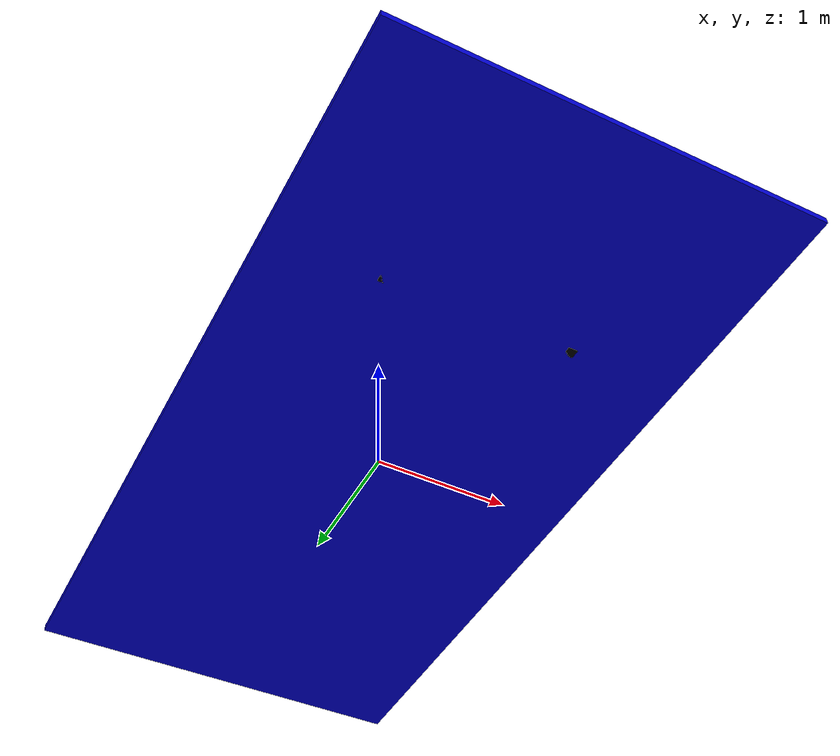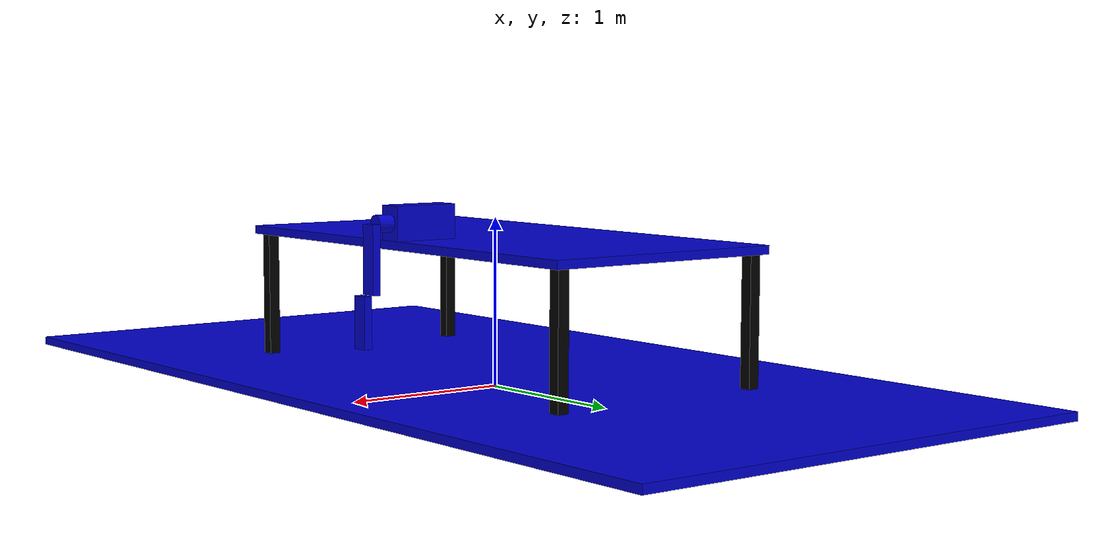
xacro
<?xml version="1.0" encoding="utf-8"?>
	<robot name="bldc_sim" xmlns:xacro="http://ros.org/wiki/xacro">
	<xacro:include filename="$(find bldc_stand_sim)/bldc_description/bldc_sim.urdf.xacro"/>

			<transmission name="tran0">
		     <type>transmission_interface/SimpleTransmission</type>
		     <joint name="stand_rotor">
		      <hardwareInterface>hardware_interface/EffortJointInterface</hardwareInterface>
		     </joint>
		     <actuator name="motor0">
		      <hardwareInterface>hardware_interface/EffortJointInterface</hardwareInterface>
		      <!--hardware_interface/-->
		      <mechanicalReduction>6</mechanicalReduction>
		     </actuator>
		  	</transmission>

		<gazebo>
		  <plugin name="gazebo_ros_control" filename="libgazebo_ros_control.so">
		    <robotNamespace>/bldc_sim</robotNamespace>
		  </plugin>
</gazebo>

</robot>

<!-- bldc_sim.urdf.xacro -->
<robot name="bldc_sim" xmlns:xacro="http://ros.org/wiki/xacro">

<!--SOME PROPERTIES!-->
		<xacro:property name="table_length" value="3" />
		<xacro:property name="table_width" value="1.5" />
		<xacro:property name="table_height" value="0.05" />

		<xacro:property name="foot_height" value="0.80" />
		<xacro:property name="foot_width" value="0.07" />
		<xacro:property name="foot_length" value="0.07" />

		<xacro:property name="stand_height" value="0.2" />
		<xacro:property name="stand_length" value="0.4" />
		<xacro:property name="stand_width" value="0.15" />

		<xacro:property name="rotor_length" value="0.1" />
		<xacro:property name="rotor_radius" value="0.05" />

		<xacro:property name="link1_height" value="0.05" />
		<xacro:property name="link1_length" value="0.4" />
		<xacro:property name="link1_width" value="0.10" />

		<xacro:property name="link2_height" value="0.05" />
		<xacro:property name="link2_length" value="0.3" />
		<xacro:property name="link2_width" value="0.10" />

		<xacro:property name="links_offset" value="0.06" />

		  <gazebo reference="table_down">
		    <material>Gazebo/Grey</material>
		  </gazebo>

		  <gazebo reference="table_upper">
		    <material>Gazebo/GreyTransparent</material>
		  </gazebo>

		  <gazebo reference="foot_1">
		    <material>Gazebo/DarkGrey</material>
		  </gazebo>

		  <gazebo reference="foot_2">
		    <material>Gazebo/DarkGrey</material>
		  </gazebo>

		  <gazebo reference="foot_3">
		    <material>Gazebo/DarkGrey</material>
		  </gazebo>

		  <gazebo reference="foot_4">
		    <material>Gazebo/DarkGrey</material>
		  </gazebo>

		  <gazebo reference="stand">
		    <material>Gazebo/Black</material>
		  </gazebo>

		<gazebo reference="rotor">
		    <material>Gazebo/Blue</material>
		  </gazebo>

		<gazebo reference="link1">
		    <material>Gazebo/Yellow</material>
		  </gazebo>

		<gazebo reference="link2">
		    <material>Gazebo/Red</material>
		  </gazebo>

		<link name ="world"/>

<!--FLOOR!-->
	 	<link name="table_down">
	   		<visual>
	    			<geometry>
	        			<box size ="${2*table_width} ${2*table_length} ${table_height}"/>
	    			</geometry>
	    			<origin xyz ="0 0 ${table_height/2}"/>
	    			<material name="blue">
        				<color rgba="0 0 0.8 1"/>
     	    			</material>
	   		</visual>
			<collision>
				<geometry>
					<box size ="${2*table_width} ${2*table_length} ${table_height}"/>
			        </geometry>
			</collision>
			<inertial>
				<mass value="100"/>
				<inertia
				      ixx="1.0" ixy="0.0" ixz="0.0"
				      iyy="1.0" iyz="0.0"
				      izz="1.0"/>
			</inertial>
	 	</link>

	 	<joint name="world_table_down" type="fixed">
	 		<parent link="world"/>
	 		<child link="table_down"/>
			<origin rpy="0 0 0" xyz="0 0 ${table_height}"/>
	 	</joint>
<!--Foot #1!-->
			<link name="foot_1">
			   <visual>
			    <geometry>
				<box size ="${foot_width} ${foot_length} ${foot_height}"/>
			    </geometry>
			    <origin rpy="0 0 0" xyz ="0 0 0"/>
			    <material name="black">
					<color rgba="0 0 0 1"/>
		     	    </material>
			   </visual>
			   <collision>
				<geometry>
					<box size ="${foot_width} ${foot_length} ${foot_height}"/>
			        </geometry>
			   </collision>
			   <inertial>
				<mass value="10"/>
				<inertia
				      ixx="1.0" ixy="0.0" ixz="0.0"
				      iyy="1.0" iyz="0.0"
				      izz="1.0"/>
			   </inertial>
			 </link>

			 <joint name="table__down_foot_1" type="fixed">
			 	<parent link="table_down"/>
			 	<child link="foot_1"/>
				<origin rpy="0 0 0" xyz="-${table_width/2-foot_width} -${table_length/2-foot_length} ${foot_height/2}"/>
			 </joint>
<!--Foot #2!-->
			<link name="foot_2">
			   <visual>
			    <geometry>
				<box size ="${foot_width} ${foot_length} ${foot_height}"/>
			    </geometry>
			    <origin rpy="0 0 0" xyz ="0 0 0"/>
			    <material name="black">
					<color rgba="0 0 0 1"/>
		     	    </material>
			   </visual>
			   <collision>
				<geometry>
					<box size ="${foot_width} ${foot_length} ${foot_height}"/>
			        </geometry>
			   </collision>
			   <inertial>
				<mass value="10"/>
				<inertia
				      ixx="1.0" ixy="0.0" ixz="0.0"
				      iyy="1.0" iyz="0.0"
				      izz="1.0"/>
			   </inertial>
			 </link>

			 <joint name="table__down_foot_2" type="fixed">
			 	<parent link="table_down"/>
			 	<child link="foot_2"/>
				<origin rpy="0 0 0" xyz="${table_width/2-foot_width} -${table_length/2-foot_length} ${foot_height/2}"/>
			 </joint>
<!--Foot #3!-->
			<link name="foot_3">
			   <visual>
			    <geometry>
				<box size ="${foot_width} ${foot_length} ${foot_height}"/>
			    </geometry>
			    <origin rpy="0 0 0" xyz ="0 0 0"/>
			    <material name="black">
					<color rgba="0 0 0 1"/>
		     	    </material>
			   </visual>
			   <collision>
				<geometry>
					<box size ="${foot_width} ${foot_length} ${foot_height}"/>
			        </geometry>
			   </collision>
			   <inertial>
				<mass value="10"/>
				<inertia
				      ixx="1.0" ixy="0.0" ixz="0.0"
				      iyy="1.0" iyz="0.0"
				      izz="1.0"/>
			   </inertial>
			 </link>

			 <joint name="table__down_foot_3" type="fixed">
			 	<parent link="table_down"/>
			 	<child link="foot_3"/>
				<origin rpy="0 0 0" xyz="${table_width/2-foot_width} ${table_length/2-foot_length} ${foot_height/2}"/>
			 </joint>
<!--Foot #4!-->
			<link name="foot_4">
			   <visual>
			    <geometry>
				<box size ="${foot_width} ${foot_length} ${foot_height}"/>
			    </geometry>
			    <origin rpy="0 0 0" xyz ="0 0 0"/>
			    <material name="black">
					<color rgba="0 0 0 1"/>
		     	    </material>
			   </visual>
			   <collision>
				<geometry>
					<box size ="${foot_width} ${foot_length} ${foot_height}"/>
			        </geometry>
			   </collision>
			   <inertial>
				<mass value="10"/>
				<inertia
				      ixx="1.0" ixy="0.0" ixz="0.0"
				      iyy="1.0" iyz="0.0"
				      izz="1.0"/>
			   </inertial>
			 </link>

			 <joint name="table__down_foot_4" type="fixed">
			 	<parent link="table_down"/>
			 	<child link="foot_4"/>
				<origin rpy="0 0 0" xyz="-${table_width/2-foot_width} ${table_length/2-foot_length} ${foot_height/2}"/>
			 </joint>

<!--Table!-->
	 	<link name="table_upper">
	   		<visual>
	    			<geometry>
	        			<box size ="${table_width} ${table_length} ${table_height}"/>
	    			</geometry>
	    			<origin xyz ="0 0 -${table_height/2}"/>
	    			<material name="blue">
        				<color rgba="0 0 0.8 1"/>
     	    			</material>
	   		</visual>
			<collision>
				<geometry>
					<box size ="${table_width} ${table_length} ${table_height}"/>
			        </geometry>
			</collision>
			<inertial>
				<mass value="100"/>
				<inertia
				      ixx="1.0" ixy="0.0" ixz="0.0"
				      iyy="1.0" iyz="0.0"
				      izz="1.0"/>
			</inertial>
	 	</link>

	 	<joint name="world_table_upper" type="fixed">
	 		<parent link="table_down"/>
	 		<child link="table_upper"/>
			<origin rpy="0 0 0" xyz="0 0 ${foot_height+table_height}"/>
	 	</joint>

<!--Stand!-->
	 	<link name="stand">
	   		<visual>
	    			<geometry>
	        			<box size ="${stand_length} ${stand_width} ${stand_height}"/>
	    			</geometry>
	    			<origin xyz ="0 0 ${stand_height/2}"/>
	    			<material name="blue">
        				<color rgba="0 0 0.8 1"/>
     	    			</material>
	   		</visual>
			<collision>
				<geometry>
					<box size ="${stand_length} ${stand_width} ${stand_height}"/>
			        </geometry>
			</collision>
			<inertial>
				<mass value="100"/>
				<inertia
				      ixx="1.0" ixy="0.0" ixz="0.0"
				      iyy="1.0" iyz="0.0"
				      izz="1.0"/>
			</inertial>
	 	</link>

	 	<joint name="table_upper_stand" type="fixed">
	 		<parent link="table_upper"/>
	 		<child link="stand"/>
			<origin rpy="0 0 0" xyz="${table_width/2-stand_length/2} 0 0"/>
	 	</joint>

<!--Rotor!-->
	 	<link name="rotor">
	   		<visual>
	    			<geometry>
	        			<cylinder length ="${rotor_length}" radius="${rotor_radius}"/>
	    			</geometry>
	    			<origin rpy="0 1.57075 0" xyz ="0 0 0"/>
	    			<material name="blue">
        				<color rgba="0 0 0.8 1"/>
     	    			</material>
	   		</visual>
			<collision>
				<geometry>
					<cylinder length ="${rotor_length}" radius="${rotor_radius}"/>
			        </geometry>
			</collision>
			<inertial>
				<mass value="0.10"/>
				<inertia
				      ixx="1.0" ixy="0.0" ixz="0.0"
				      iyy="1.0" iyz="0.0"
				      izz="1.0"/>
			</inertial>
	 	</link>

	 	<joint name="stand_rotor" type="continuous">
			<axis xyz="1 0 0"/>
		 	<parent link="stand"/>
		 	<child link="rotor"/>
			<origin rpy="0 0 0" xyz="${stand_length/2+rotor_length/2} 0 ${stand_height/2}"/>
			<dynamics damping="0.7"/>
	 	</joint>

	 	<link name="link1">
	   		<visual>
	    			<geometry>
	        			<box size ="${link1_height} ${link1_width} ${link1_length}"/>
	    			</geometry>
	    			<origin rpy="0 0 0" xyz ="0 0 -${link1_length/2}"/>
	    			<material name="blue">
        				<color rgba="0 0 0.8 1"/>
     	    			</material>
	   		</visual>
			<collision>
				<geometry>
					<box size ="0 0 0"/>
			        </geometry>
			</collision>
			<inertial>
				<mass value="0.2"/>
				<inertia
				      ixx="1.0" ixy="0.0" ixz="0.0"
				      iyy="1.0" iyz="0.0"
				      izz="1.0"/>
			</inertial>
	 	</link>

	 	<joint name="rotor_link1" type="fixed">
		 	<parent link="rotor"/>
		 	<child link="link1"/>
			<origin rpy="0 0 0" xyz="${rotor_length/2+link1_height/2} 0 0"/>

	 	</joint>

	 	<link name="link2">
	   		<visual>
	    			<geometry>
	        			<box size ="${link2_height} ${link2_width} ${link2_length}"/>
	    			</geometry>
	    			<origin xyz ="0 0 -${link2_length/2}"/>
	    			<material name="blue">
        				<color rgba="0 0 0.8 1"/>
     	    			</material>
	   		</visual>
			<collision>
				<geometry>
					<box size ="${link2_height} ${link2_width} ${link2_length}"/>
			        </geometry>
			</collision>
			<inertial>
				<mass value="0.2"/>
				<inertia
				      ixx="1" ixy="0.0" ixz="0.0"
				      iyy="1" iyz="0.0"
				      izz="1"/>
				</inertial>
	 	</link>

	 	<joint name="link1_link2" type="continuous">
			<axis xyz="1 0 0"/>
		 	<parent link="link1"/>
		 	<child link="link2"/>
			<origin xyz="${links_offset} 0 -${link1_length}"/>
			<dynamics damping="0.0"/>
	 	</joint>

</robot>
